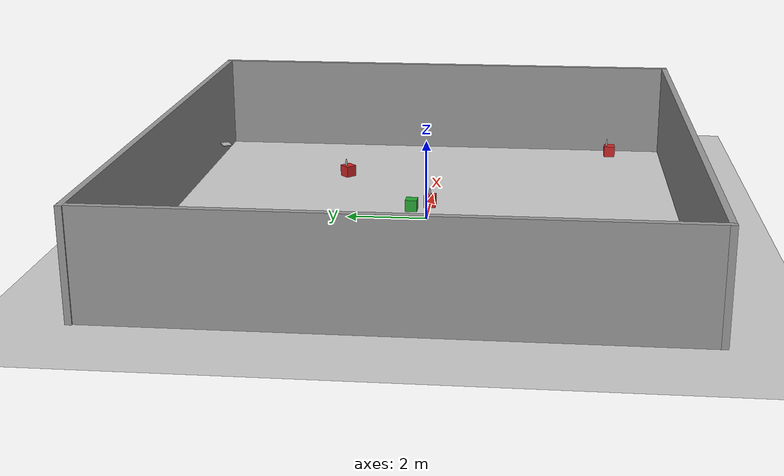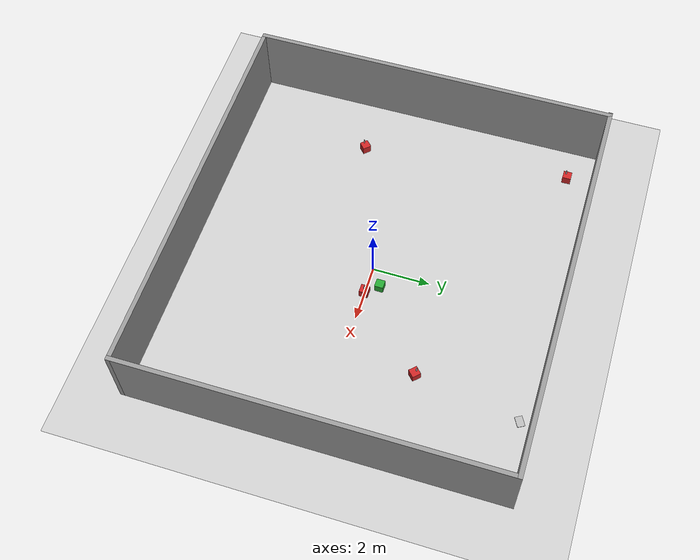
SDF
<sdf version="1.6">
 <world name="Own Room">
  <light name="sun" type="directional">
   <pose>0 0 10 0 -0 0</pose>
   <diffuse>0.8 0.8 0.8 1</diffuse>
   <specular>0.2 0.2 0.2 1</specular>
   <attenuation>
    <range>1000</range>
    <constant>0.9</constant>
    <linear>0.01</linear>
    <quadratic>0.001</quadratic>
   </attenuation>
   <direction>-0.5 0.1 -0.9</direction>
  </light>
  <model name="ground_plane">
   <static>1</static>
   <link name="link">
    <collision name="collision">
     <geometry><plane><normal>0 0 1</normal><size>100 100</size></plane></geometry>
     <surface>
      <contact><collide_bitmask>65535</collide_bitmask></contact>
      <friction><ode><mu>100</mu><mu2>50</mu2></ode></friction>
     </surface>
    </collision>
    <visual name="visual">
     <cast_shadows>0</cast_shadows>
     <geometry><plane><normal>0 0 1</normal><size>100 100</size></plane></geometry>
     <material>
      <script><uri>file://media/materials/scripts/gazebo.material</uri><name>Gazebo/Grey</name></script>
     </material>
    </visual>
   </link>
  </model>
  <gravity>0 0 -9.8</gravity>
  <magnetic_field>6e-06 2.3e-05 -4.2e-05</magnetic_field>
  <atmosphere type="adiabatic"/>
  <physics name="default_physics" default="0" type="ode">
   <max_step_size>0.001</max_step_size>
   <real_time_factor>1</real_time_factor>
   <real_time_update_rate>1000</real_time_update_rate>
  </physics>
  <scene><ambient>0.4 0.4 0.4 1</ambient><background>0.7 0.7 0.7 1</background><shadows>1</shadows></scene>
  <spherical_coordinates>
   <surface_model>EARTH_WGS84</surface_model>
   <latitude_deg>0</latitude_deg>
   <longitude_deg>0</longitude_deg>
   <elevation>0</elevation>
   <heading_deg>0</heading_deg>
  </spherical_coordinates>
  <model name="Room">
   <pose>-0.11793 0.094402 0 0 -0 0</pose>
   <link name="Wall_1">
    <collision name="Wall_1_Collision">
     <geometry><box><size>13 0.15 2.5</size></box></geometry>
     <pose>0 0 1.25 0 -0 0</pose>
    </collision>
    <visual name="Wall_1_Visual">
     <pose>0 0 1.25 0 -0 0</pose>
     <geometry><box><size>13 0.15 2.5</size></box></geometry>
     <material>
      <script><uri>file://media/materials/scripts/gazebo.material</uri><name>Gazebo/Grey</name></script>
      <ambient>0.333333 0.341176 0.32549 1</ambient>
     </material>
     <meta><layer>0</layer></meta>
    </visual>
    <pose>-6.88982 -0 0 0 -0 1.5708</pose>
   </link>
   <link name="Wall_2">
    <collision name="Wall_2_Collision">
     <geometry><box><size>14 0.15 2.5</size></box></geometry>
     <pose>0 0 1.25 0 -0 0</pose>
    </collision>
    <visual name="Wall_2_Visual">
     <pose>0 0 1.25 0 -0 0</pose>
     <geometry><box><size>14 0.15 2.5</size></box></geometry>
     <material>
      <script><uri>file://media/materials/scripts/gazebo.material</uri><name>Gazebo/Grey</name></script>
      <ambient>0.333333 0.341176 0.32549 1</ambient>
     </material>
     <meta><layer>0</layer></meta>
    </visual>
    <pose>-0 6.425 0 0 -0 0</pose>
   </link>
   <link name="Wall_4">
    <collision name="Wall_4_Collision">
     <geometry><box><size>13 0.15 2.5</size></box></geometry>
     <pose>0 0 1.25 0 -0 0</pose>
    </collision>
    <visual name="Wall_4_Visual">
     <pose>0 0 1.25 0 -0 0</pose>
     <geometry><box><size>13 0.15 2.5</size></box></geometry>
     <material>
      <script><uri>file://media/materials/scripts/gazebo.material</uri><name>Gazebo/Grey</name></script>
      <ambient>0.333333 0.341176 0.32549 1</ambient>
     </material>
     <meta><layer>0</layer></meta>
    </visual>
    <pose>6.925 -0 0 0 -0 -1.5708</pose>
   </link>
   <link name="Wall_5">
    <collision name="Wall_5_Collision">
     <geometry><box><size>13.9648 0.15 2.5</size></box></geometry>
     <pose>0 0 1.25 0 -0 0</pose>
    </collision>
    <visual name="Wall_5_Visual">
     <pose>0 0 1.25 0 -0 0</pose>
     <geometry><box><size>13.9648 0.15 2.5</size></box></geometry>
     <material>
      <script><uri>file://media/materials/scripts/gazebo.material</uri><name>Gazebo/Grey</name></script>
      <ambient>0.333333 0.341176 0.32549 1</ambient>
     </material>
     <meta><layer>0</layer></meta>
    </visual>
    <pose>0.017589 -6.425 0 0 -0 3.14159</pose>
   </link>
   <static>1</static>
  </model>
  <model name="newspaper_2">
   <link name="link_0">
    <visual name="visual">
     <geometry><box><size>0.35 0.25 0.02</size></box></geometry>
     <material>
      <script>
       <uri>model://newspaper_2/materials/scripts</uri>
       <uri>model://newspaper_2/materials/textures</uri>
       <name>newspaper_2</name>
      </script>
     </material>
    </visual>
    <collision name="collision"><geometry><box><size>0.35 0.25 0.02</size></box></geometry></collision>
   </link>
   <static>1</static>
   <pose>4.3044 6.12171 0.587536 0 -0 0.504059</pose>
  </model>
  <model name="Red_Table_Cube_0">
   <link name="link_0">
    <inertial>
     <mass>1</mass>
     <inertia>
      <ixx>0.166667</ixx>
      <ixy>0</ixy>
      <ixz>0</ixz>
      <iyy>0.166667</iyy>
      <iyz>0</iyz>
      <izz>0.166667</izz>
     </inertia>
    </inertial>
    <pose>-5e-06 -1e-06 0 0 0 -0.816126</pose>
    <visual name="visual">
     <geometry><box><size>0.3 0.3 0.3</size></box></geometry>
     <material>
      <lighting>1</lighting>
      <script><uri>file://media/materials/scripts/gazebo.material</uri><name>Gazebo/Red</name></script>
      <shader type="pixel"><normal_map>__default__</normal_map></shader>
      <ambient>1 0 0 1</ambient>
      <diffuse>1 0 0 1</diffuse>
      <specular>0.1 0.1 0.1 1</specular>
      <emissive>0 0 0 1</emissive>
     </material>
    </visual>
    <collision name="collision">
     <geometry><box><size>0.3 0.3 0.3</size></box></geometry>
     <surface>
      <friction>
       <ode><mu>1</mu><mu2>1</mu2><fdir1>0 0 0</fdir1><slip1>0</slip1><slip2>0</slip2></ode>
       <torsional>
        <coefficient>1</coefficient>
        <patch_radius>0</patch_radius>
        <surface_radius>0</surface_radius>
        <use_patch_radius>1</use_patch_radius>
        <ode><slip>0</slip></ode>
       </torsional>
      </friction>
      <bounce><restitution_coefficient>0</restitution_coefficient><threshold>1e+06</threshold></bounce>
      <contact>
       <collide_without_contact>0</collide_without_contact>
       <collide_without_contact_bitmask>1</collide_without_contact_bitmask>
       <collide_bitmask>1</collide_bitmask>
       <ode>
        <soft_cfm>0</soft_cfm>
        <soft_erp>0.2</soft_erp>
        <kp>1e+13</kp>
        <kd>1</kd>
        <max_vel>0.01</max_vel>
        <min_depth>0</min_depth>
       </ode>
       <bullet>
        <split_impulse>1</split_impulse>
        <split_impulse_penetration_threshold>-0.01</split_impulse_penetration_threshold>
        <soft_cfm>0</soft_cfm>
        <soft_erp>0.2</soft_erp>
        <kp>1e+13</kp>
        <kd>1</kd>
       </bullet>
      </contact>
     </surface>
    </collision>
   </link>
   <static>1</static>
   <pose>3.48146 2.48177 0.157949 0 0 -1.56011</pose>
  </model>
  <model name="Red_Table_Cube_1">
   <link name="link_0">
    <inertial>
     <mass>1</mass>
     <inertia>
      <ixx>0.166667</ixx>
      <ixy>0</ixy>
      <ixz>0</ixz>
      <iyy>0.166667</iyy>
      <iyz>0</iyz>
      <izz>0.166667</izz>
     </inertia>
    </inertial>
    <pose>-5e-06 -1e-06 0 0 0 -0.816126</pose>
    <visual name="visual">
     <geometry><box><size>0.3 0.3 0.3</size></box></geometry>
     <material>
      <lighting>1</lighting>
      <script><uri>file://media/materials/scripts/gazebo.material</uri><name>Gazebo/Red</name></script>
      <shader type="pixel"><normal_map>__default__</normal_map></shader>
      <ambient>1 0 0 1</ambient>
      <diffuse>1 0 0 1</diffuse>
      <specular>0.1 0.1 0.1 1</specular>
      <emissive>0 0 0 1</emissive>
     </material>
    </visual>
    <collision name="collision">
     <geometry><box><size>0.3 0.3 0.3</size></box></geometry>
     <surface>
      <friction>
       <ode><mu>1</mu><mu2>1</mu2><fdir1>0 0 0</fdir1><slip1>0</slip1><slip2>0</slip2></ode>
       <torsional>
        <coefficient>1</coefficient>
        <patch_radius>0</patch_radius>
        <surface_radius>0</surface_radius>
        <use_patch_radius>1</use_patch_radius>
        <ode><slip>0</slip></ode>
       </torsional>
      </friction>
      <bounce><restitution_coefficient>0</restitution_coefficient><threshold>1e+06</threshold></bounce>
      <contact>
       <collide_without_contact>0</collide_without_contact>
       <collide_without_contact_bitmask>1</collide_without_contact_bitmask>
       <collide_bitmask>1</collide_bitmask>
       <ode>
        <soft_cfm>0</soft_cfm>
        <soft_erp>0.2</soft_erp>
        <kp>1e+13</kp>
        <kd>1</kd>
        <max_vel>0.01</max_vel>
        <min_depth>0</min_depth>
       </ode>
       <bullet>
        <split_impulse>1</split_impulse>
        <split_impulse_penetration_threshold>-0.01</split_impulse_penetration_threshold>
        <soft_cfm>0</soft_cfm>
        <soft_erp>0.2</soft_erp>
        <kp>1e+13</kp>
        <kd>1</kd>
       </bullet>
      </contact>
     </surface>
    </collision>
   </link>
   <static>1</static>
   <pose>-5.68854 5.59475 0.157949 0 0 -0.746464</pose>
  </model>
  <model name="Red_Table_Cube_1_clone">
   <link name="link_0">
    <inertial>
     <mass>1</mass>
     <inertia>
      <ixx>0.166667</ixx>
      <ixy>0</ixy>
      <ixz>0</ixz>
      <iyy>0.166667</iyy>
      <iyz>0</iyz>
      <izz>0.166667</izz>
     </inertia>
    </inertial>
    <pose>-5e-06 -1e-06 0 0 0 -0.816126</pose>
    <visual name="visual">
     <geometry><box><size>0.3 0.3 0.3</size></box></geometry>
     <material>
      <lighting>1</lighting>
      <script><uri>file://media/materials/scripts/gazebo.material</uri><name>Gazebo/Red</name></script>
      <shader type="pixel"><normal_map>__default__</normal_map></shader>
      <ambient>1 0 0 1</ambient>
      <diffuse>1 0 0 1</diffuse>
      <specular>0.1 0.1 0.1 1</specular>
      <emissive>0 0 0 1</emissive>
     </material>
    </visual>
    <collision name="collision">
     <geometry><box><size>0.3 0.3 0.3</size></box></geometry>
     <surface>
      <friction>
       <ode><mu>1</mu><mu2>1</mu2><fdir1>0 0 0</fdir1><slip1>0</slip1><slip2>0</slip2></ode>
       <torsional>
        <coefficient>1</coefficient>
        <patch_radius>0</patch_radius>
        <surface_radius>0</surface_radius>
        <use_patch_radius>1</use_patch_radius>
        <ode><slip>0</slip></ode>
       </torsional>
      </friction>
      <bounce><restitution_coefficient>0</restitution_coefficient><threshold>1e+06</threshold></bounce>
      <contact>
       <collide_without_contact>0</collide_without_contact>
       <collide_without_contact_bitmask>1</collide_without_contact_bitmask>
       <collide_bitmask>1</collide_bitmask>
       <ode>
        <soft_cfm>0</soft_cfm>
        <soft_erp>0.2</soft_erp>
        <kp>1e+13</kp>
        <kd>1</kd>
        <max_vel>0.01</max_vel>
        <min_depth>0</min_depth>
       </ode>
       <bullet>
        <split_impulse>1</split_impulse>
        <split_impulse_penetration_threshold>-0.01</split_impulse_penetration_threshold>
        <soft_cfm>0</soft_cfm>
        <soft_erp>0.2</soft_erp>
        <kp>1e+13</kp>
        <kd>1</kd>
       </bullet>
      </contact>
     </surface>
    </collision>
   </link>
   <static>1</static>
   <pose>-4.87429 -1.79697 0.157949 0 0 -0.003123</pose>
  </model>
  <model name="Red_Table_Cube_1_clone_clone">
   <link name="link_0">
    <inertial>
     <mass>1</mass>
     <inertia>
      <ixx>0.166667</ixx>
      <ixy>0</ixy>
      <ixz>0</ixz>
      <iyy>0.166667</iyy>
      <iyz>0</iyz>
      <izz>0.166667</izz>
     </inertia>
    </inertial>
    <pose>-5e-06 -1e-06 0 0 0 -0.816126</pose>
    <visual name="visual">
     <geometry><box><size>0.3 0.3 0.3</size></box></geometry>
     <material>
      <lighting>1</lighting>
      <script><uri>file://media/materials/scripts/gazebo.material</uri><name>Gazebo/Red</name></script>
      <shader type="pixel"><normal_map>__default__</normal_map></shader>
      <ambient>1 0 0 1</ambient>
      <diffuse>1 0 0 1</diffuse>
      <specular>0.1 0.1 0.1 1</specular>
      <emissive>0 0 0 1</emissive>
     </material>
    </visual>
    <collision name="collision">
     <geometry><box><size>0.3 0.3 0.3</size></box></geometry>
     <surface>
      <friction>
       <ode><mu>1</mu><mu2>1</mu2><fdir1>0 0 0</fdir1><slip1>0</slip1><slip2>0</slip2></ode>
       <torsional>
        <coefficient>1</coefficient>
        <patch_radius>0</patch_radius>
        <surface_radius>0</surface_radius>
        <use_patch_radius>1</use_patch_radius>
        <ode><slip>0</slip></ode>
       </torsional>
      </friction>
      <bounce><restitution_coefficient>0</restitution_coefficient><threshold>1e+06</threshold></bounce>
      <contact>
       <collide_without_contact>0</collide_without_contact>
       <collide_without_contact_bitmask>1</collide_without_contact_bitmask>
       <collide_bitmask>1</collide_bitmask>
       <ode>
        <soft_cfm>0</soft_cfm>
        <soft_erp>0.2</soft_erp>
        <kp>1e+13</kp>
        <kd>1</kd>
        <max_vel>0.01</max_vel>
        <min_depth>0</min_depth>
       </ode>
       <bullet>
        <split_impulse>1</split_impulse>
        <split_impulse_penetration_threshold>-0.01</split_impulse_penetration_threshold>
        <soft_cfm>0</soft_cfm>
        <soft_erp>0.2</soft_erp>
        <kp>1e+13</kp>
        <kd>1</kd>
       </bullet>
      </contact>
     </surface>
    </collision>
   </link>
   <static>1</static>
   <pose>6.16041 -4.81618 0.157949 0 -0 0.821499</pose>
  </model>
  <model name="bottle">
   <link name="link_0">
    <visual name="visual">
     <geometry><mesh><uri>model://bottle/meshes/bottle.dae</uri><scale>1 1 1</scale></mesh></geometry>
     <material>
      <script>
       <uri>model://bottle/materials/scripts</uri>
       <uri>model://bottle/materials/textures</uri>
       <name>coke</name>
      </script>
     </material>
    </visual>
    <collision name="collision">
     <geometry><mesh><uri>model://bottle/meshes/bottle.dae</uri><scale>1 1 1</scale></mesh></geometry>
    </collision>
    <inertial>
     <inertia><ixx>1</ixx><ixy>0</ixy><ixz>0</ixz><iyy>1</iyy><iyz>0</iyz><izz>1</izz></inertia>
     <mass>1</mass>
    </inertial>
   </link>
   <static>0</static>
   <pose>3.42774 2.53079 0.395731 0.017555 0.001036 -0.00077</pose>
  </model>
  <model name="bottle_clone">
   <link name="link_0">
    <visual name="visual">
     <geometry><mesh><uri>model://bottle/meshes/bottle.dae</uri><scale>1 1 1</scale></mesh></geometry>
     <material>
      <script>
       <uri>model://bottle/materials/scripts</uri>
       <uri>model://bottle/materials/textures</uri>
       <name>coke</name>
      </script>
     </material>
    </visual>
    <collision name="collision">
     <geometry><mesh><uri>model://bottle/meshes/bottle.dae</uri><scale>1 1 1</scale></mesh></geometry>
    </collision>
    <inertial>
     <inertia><ixx>1</ixx><ixy>0</ixy><ixz>0</ixz><iyy>1</iyy><iyz>0</iyz><izz>1</izz></inertia>
     <mass>1</mass>
    </inertial>
   </link>
   <static>0</static>
   <pose>6.1596 -4.73695 0.395721 0.01755 0.001031 -0.000772</pose>
  </model>
  <model name="bottle_clone_0">
   <link name="link_0">
    <visual name="visual">
     <geometry><mesh><uri>model://bottle/meshes/bottle.dae</uri><scale>1 1 1</scale></mesh></geometry>
     <material>
      <script>
       <uri>model://bottle/materials/scripts</uri>
       <uri>model://bottle/materials/textures</uri>
       <name>coke</name>
      </script>
     </material>
    </visual>
    <collision name="collision">
     <geometry><mesh><uri>model://bottle/meshes/bottle.dae</uri><scale>1 1 1</scale></mesh></geometry>
    </collision>
    <inertial>
     <inertia><ixx>1</ixx><ixy>0</ixy><ixz>0</ixz><iyy>1</iyy><iyz>0</iyz><izz>1</izz></inertia>
     <mass>1</mass>
    </inertial>
   </link>
   <static>0</static>
   <pose>-4.93428 -1.85876 0.395721 0.017555 0.001033 -0.000767</pose>
  </model>
  <model name="bottle_clone_1">
   <link name="link_0">
    <visual name="visual">
     <geometry><mesh><uri>model://bottle/meshes/bottle.dae</uri><scale>1 1 1</scale></mesh></geometry>
     <material>
      <script>
       <uri>model://bottle/materials/scripts</uri>
       <uri>model://bottle/materials/textures</uri>
       <name>coke</name>
      </script>
     </material>
    </visual>
    <collision name="collision">
     <geometry><mesh><uri>model://bottle/meshes/bottle.dae</uri><scale>1 1 1</scale></mesh></geometry>
    </collision>
    <inertial>
     <inertia><ixx>1</ixx><ixy>0</ixy><ixz>0</ixz><iyy>1</iyy><iyz>0</iyz><izz>1</izz></inertia>
     <mass>1</mass>
    </inertial>
   </link>
   <static>0</static>
   <pose>-5.74519 5.54037 0.395721 0.017562 0.001041 -0.000776</pose>
  </model>
  <model name="Red_Table_Cube_0_clone">
   <link name="link_0">
    <inertial>
     <mass>1</mass>
     <inertia>
      <ixx>0.166667</ixx>
      <ixy>0</ixy>
      <ixz>0</ixz>
      <iyy>0.166667</iyy>
      <iyz>0</iyz>
      <izz>0.166667</izz>
     </inertia>
    </inertial>
    <pose>-5e-06 -1e-06 0 0 0 -0.816126</pose>
    <visual name="visual">
     <geometry><box><size>0.3 0.3 0.3</size></box></geometry>
     <material>
      <lighting>1</lighting>
      <script><uri>file://media/materials/scripts/gazebo.material</uri><name>Gazebo/Red</name></script>
      <shader type="pixel"><normal_map>__default__</normal_map></shader>
      <ambient>1 0 0 1</ambient>
      <diffuse>1 0 0 1</diffuse>
      <specular>0.1 0.1 0.1 1</specular>
      <emissive>0 0 0 1</emissive>
     </material>
    </visual>
    <collision name="collision">
     <geometry><box><size>0.3 0.3 0.3</size></box></geometry>
     <surface>
      <friction>
       <ode><mu>1</mu><mu2>1</mu2><fdir1>0 0 0</fdir1><slip1>0</slip1><slip2>0</slip2></ode>
       <torsional>
        <coefficient>1</coefficient>
        <patch_radius>0</patch_radius>
        <surface_radius>0</surface_radius>
        <use_patch_radius>1</use_patch_radius>
        <ode><slip>0</slip></ode>
       </torsional>
      </friction>
      <bounce><restitution_coefficient>0</restitution_coefficient><threshold>1e+06</threshold></bounce>
      <contact>
       <collide_without_contact>0</collide_without_contact>
       <collide_without_contact_bitmask>1</collide_without_contact_bitmask>
       <collide_bitmask>1</collide_bitmask>
       <ode>
        <soft_cfm>0</soft_cfm>
        <soft_erp>0.2</soft_erp>
        <kp>1e+13</kp>
        <kd>1</kd>
        <max_vel>0.01</max_vel>
        <min_depth>0</min_depth>
       </ode>
       <bullet>
        <split_impulse>1</split_impulse>
        <split_impulse_penetration_threshold>-0.01</split_impulse_penetration_threshold>
        <soft_cfm>0</soft_cfm>
        <soft_erp>0.2</soft_erp>
        <kp>1e+13</kp>
        <kd>1</kd>
       </bullet>
      </contact>
     </surface>
    </collision>
   </link>
   <static>1</static>
   <pose>1 0 0.157949 0 -0 0.8</pose>
  </model>
  <model name="bottle_clone_2">
   <link name="link_0">
    <visual name="visual">
     <geometry><mesh><uri>model://bottle/meshes/bottle.dae</uri><scale>1 1 1</scale></mesh></geometry>
     <material>
      <script>
       <uri>model://bottle/materials/scripts</uri>
       <uri>model://bottle/materials/textures</uri>
       <name>coke</name>
      </script>
     </material>
    </visual>
    <collision name="collision">
     <geometry><mesh><uri>model://bottle/meshes/bottle.dae</uri><scale>1 1 1</scale></mesh></geometry>
    </collision>
    <inertial>
     <inertia><ixx>1</ixx><ixy>0</ixy><ixz>0</ixz><iyy>1</iyy><iyz>0</iyz><izz>1</izz></inertia>
     <mass>1</mass>
    </inertial>
   </link>
   <static>0</static>
   <pose>1 -1e-06 0.395721 0.017561 0.001045 -0.000772</pose>
  </model>
  <model name="Green_Table_Cube">
   <link name="link_0">
    <inertial>
     <mass>1</mass>
     <inertia>
      <ixx>0.166667</ixx>
      <ixy>0</ixy>
      <ixz>0</ixz>
      <iyy>0.166667</iyy>
      <iyz>0</iyz>
      <izz>0.166667</izz>
     </inertia>
    </inertial>
    <pose>-5e-06 -1e-06 0 0 0 -0.816126</pose>
    <visual name="visual">
     <geometry><box><size>0.3 0.3 0.3</size></box></geometry>
     <material>
      <lighting>1</lighting>
      <script><uri>file://media/materials/scripts/gazebo.material</uri><name>Gazebo/Green</name></script>
      <shader type="pixel"><normal_map>__default__</normal_map></shader>
      <ambient>0 1 0 1</ambient>
      <diffuse>0 1 0 1</diffuse>
      <specular>0.1 0.1 0.1 1</specular>
      <emissive>0 0 0 1</emissive>
     </material>
    </visual>
    <collision name="collision">
     <geometry><box><size>0.3 0.3 0.3</size></box></geometry>
     <surface>
      <friction>
       <ode><mu>1</mu><mu2>1</mu2><fdir1>0 0 0</fdir1><slip1>0</slip1><slip2>0</slip2></ode>
       <torsional>
        <coefficient>1</coefficient>
        <patch_radius>0</patch_radius>
        <surface_radius>0</surface_radius>
        <use_patch_radius>1</use_patch_radius>
        <ode><slip>0</slip></ode>
       </torsional>
      </friction>
      <bounce><restitution_coefficient>0</restitution_coefficient><threshold>1e+06</threshold></bounce>
      <contact>
       <collide_without_contact>0</collide_without_contact>
       <collide_without_contact_bitmask>1</collide_without_contact_bitmask>
       <collide_bitmask>1</collide_bitmask>
       <ode>
        <soft_cfm>0</soft_cfm>
        <soft_erp>0.2</soft_erp>
        <kp>1e+13</kp>
        <kd>1</kd>
        <max_vel>0.01</max_vel>
        <min_depth>0</min_depth>
       </ode>
       <bullet>
        <split_impulse>1</split_impulse>
        <split_impulse_penetration_threshold>-0.01</split_impulse_penetration_threshold>
        <soft_cfm>0</soft_cfm>
        <soft_erp>0.2</soft_erp>
        <kp>1e+13</kp>
        <kd>1</kd>
       </bullet>
      </contact>
     </surface>
    </collision>
   </link>
   <static>1</static>
   <pose>0.641855 0.438371 0.157949 0 -0 0.8</pose>
  </model>
 </world>
</sdf>
